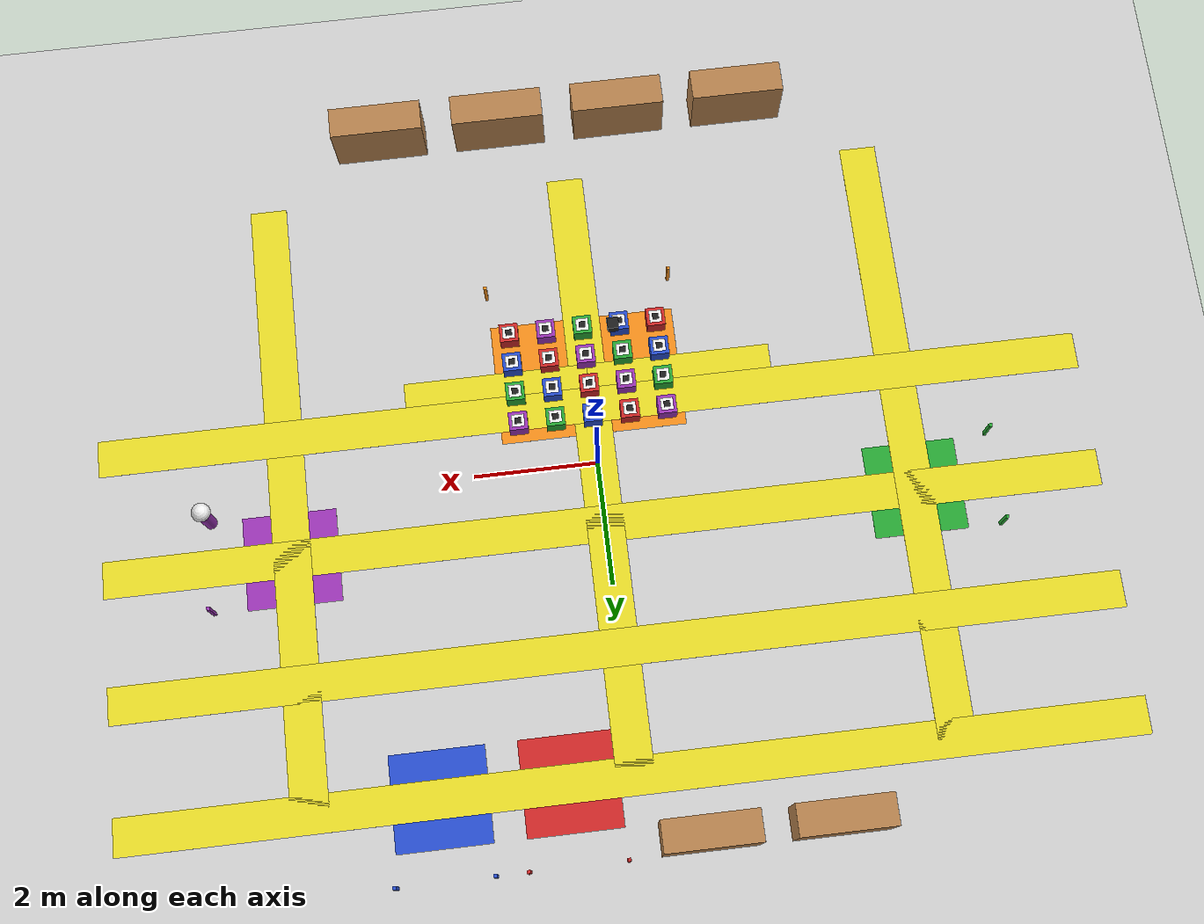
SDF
<?xml version="1.0"?>
<sdf version="1.4">
  <world name="warehouse_world">

    <!-- Physics settings -->
    <physics type="ode">
      <real_time_update_rate>1000.0</real_time_update_rate>
      <max_step_size>0.001</max_step_size>
      <real_time_factor>1</real_time_factor>
      <ode>
        <solver>
          <type>quick</type>
          <iters>150</iters>
          <precon_iters>0</precon_iters>
          <sor>1.400000</sor>
          <use_dynamic_moi_rescaling>1</use_dynamic_moi_rescaling>
        </solver>
        <constraints>
          <cfm>0.00001</cfm>
          <erp>0.2</erp>
          <contact_max_correcting_vel>2000.000000</contact_max_correcting_vel>
          <contact_surface_layer>0.01000</contact_surface_layer>
        </constraints>
      </ode>
    </physics>

    <!-- Scene -->
    <scene>
      <ambient>0.4 0.4 0.4 1</ambient>
      <background>0.7 0.7 0.7 1</background>
      <shadows>true</shadows>
    </scene>

    <!-- Light -->
    <include>
      <uri>model://sun</uri>
    </include>

    <!-- Ground plane -->
    <model name="ground_plane">
      <static>true</static>
      <link name="link">
        <collision name="collision">
          <geometry>
            <plane>
              <normal>0 0 1</normal>
              <size>20 20</size>
            </plane>
          </geometry>
          <surface>
            <friction>
              <ode>
                <mu>100</mu>
                <mu2>50</mu2>
              </ode>
            </friction>
          </surface>
        </collision>
        <visual name="visual">
          <cast_shadows>false</cast_shadows>
          <geometry>
            <plane>
              <normal>0 0 1</normal>
              <size>20 20</size>
            </plane>
          </geometry>
          <material>
            <script>
              <uri>file://media/materials/scripts/gazebo.material</uri>
              <name>Gazebo/Grey</name>
            </script>
          </material>
        </visual>
      </link>
    </model>

    <!-- Overhead Camera for Bird's Eye View -->
    <model name="overhead_camera">
      <static>true</static>
      <pose>0 2 12 0 1.5708 0</pose>
      <link name="camera_link">
        <visual name="visual">
          <geometry>
            <box>
              <size>0.1 0.1 0.1</size>
            </box>
          </geometry>
          <material>
            <script>
              <uri>file://media/materials/scripts/gazebo.material</uri>
              <name>Gazebo/Black</name>
            </script>
          </material>
        </visual>
        <sensor name="overhead_camera_sensor" type="camera">
          <camera>
            <horizontal_fov>1.5708</horizontal_fov>
            <image>
              <width>1920</width>
              <height>1080</height>
              <format>R8G8B8</format>
            </image>
            <clip>
              <near>0.1</near>
              <far>20</far>
            </clip>
            <noise>
              <type>gaussian</type>
              <mean>0.0</mean>
              <stddev>0.001</stddev>
            </noise>
          </camera>
          <always_on>1</always_on>
          <update_rate>30</update_rate>
          <visualize>true</visualize>
          <plugin name="overhead_camera_controller" filename="libgazebo_ros_camera.so">
            <alwaysOn>true</alwaysOn>
            <updateRate>30.0</updateRate>
            <cameraName>overhead_camera</cameraName>
            <imageTopicName>image_raw</imageTopicName>
            <cameraInfoTopicName>camera_info</cameraInfoTopicName>
            <frameName>overhead_camera_link</frameName>
            <hackBaseline>0.0</hackBaseline>
            <distortionK1>0.0</distortionK1>
            <distortionK2>0.0</distortionK2>
            <distortionK3>0.0</distortionK3>
            <distortionT1>0.0</distortionT1>
            <distortionT2>0.0</distortionT2>
          </plugin>
        </sensor>
      </link>
    </model>

    <!-- Yellow lane lines (widened 4x) -->
    <!-- Main horizontal lanes -->
    <model name="lane_h1">
      <static>true</static>
      <pose>0 5 0.002 0 0 0</pose>
      <link name="link">
        <collision name="collision">
          <geometry>
            <box>
              <size>16 0.6 0.002</size>
            </box>
          </geometry>
        </collision>
        <visual name="visual">
          <geometry>
            <box>
              <size>16 0.6 0.002</size>
            </box>
          </geometry>
          <material>
            <script>
              <uri>file://media/materials/scripts/gazebo.material</uri>
              <name>Gazebo/Yellow</name>
            </script>
          </material>
        </visual>
      </link>
    </model>

    <model name="lane_h2">
      <static>true</static>
      <pose>0 3 0.002 0 0 0</pose>
      <link name="link">
        <collision name="collision">
          <geometry>
            <box>
              <size>16 0.6 0.002</size>
            </box>
          </geometry>
        </collision>
        <visual name="visual">
          <geometry>
            <box>
              <size>16 0.6 0.002</size>
            </box>
          </geometry>
          <material>
            <script>
              <uri>file://media/materials/scripts/gazebo.material</uri>
              <name>Gazebo/Yellow</name>
            </script>
          </material>
        </visual>
      </link>
    </model>

    <model name="lane_h3">
      <static>true</static>
      <pose>0 1 0.002 0 0 0</pose>
      <link name="link">
        <collision name="collision">
          <geometry>
            <box>
              <size>16 0.6 0.002</size>
            </box>
          </geometry>
        </collision>
        <visual name="visual">
          <geometry>
            <box>
              <size>16 0.6 0.002</size>
            </box>
          </geometry>
          <material>
            <script>
              <uri>file://media/materials/scripts/gazebo.material</uri>
              <name>Gazebo/Yellow</name>
            </script>
          </material>
        </visual>
      </link>
    </model>

    <!-- Additional horizontal lane at y=-1 -->
    <model name="lane_h0">
      <static>true</static>
      <pose>0 -1 0.002 0 0 0</pose>
      <link name="link">
        <collision name="collision">
          <geometry>
            <box>
              <size>16 0.6 0.002</size>
            </box>
          </geometry>
        </collision>
        <visual name="visual">
          <geometry>
            <box>
              <size>16 0.6 0.002</size>
            </box>
          </geometry>
          <material>
            <script>
              <uri>file://media/materials/scripts/gazebo.material</uri>
              <name>Gazebo/Yellow</name>
            </script>
          </material>
        </visual>
      </link>
    </model>

    <!-- Vertical connecting lanes -->
    <model name="lane_v1">
      <static>true</static>
      <pose>-5 0 0.002 0 0 1.5708</pose>
      <link name="link">
        <collision name="collision">
          <geometry>
            <box>
              <size>10 0.6 0.002</size>
            </box>
          </geometry>
        </collision>
        <visual name="visual">
          <geometry>
            <box>
              <size>10 0.6 0.002</size>
            </box>
          </geometry>
          <material>
            <script>
              <uri>file://media/materials/scripts/gazebo.material</uri>
              <name>Gazebo/Yellow</name>
            </script>
          </material>
        </visual>
      </link>
    </model>

    <model name="lane_v2">
      <static>true</static>
      <pose>0 0 0.002 0 0 1.5708</pose>
      <link name="link">
        <collision name="collision">
          <geometry>
            <box>
              <size>10 0.6 0.002</size>
            </box>
          </geometry>
        </collision>
        <visual name="visual">
          <geometry>
            <box>
              <size>10 0.6 0.002</size>
            </box>
          </geometry>
          <material>
            <script>
              <uri>file://media/materials/scripts/gazebo.material</uri>
              <name>Gazebo/Yellow</name>
            </script>
          </material>
        </visual>
      </link>
    </model>

    <model name="lane_v3">
      <static>true</static>
      <pose>5 0 0.002 0 0 1.5708</pose>
      <link name="link">
        <collision name="collision">
          <geometry>
            <box>
              <size>10 0.6 0.002</size>
            </box>
          </geometry>
        </collision>
        <visual name="visual">
          <geometry>
            <box>
              <size>10 0.6 0.002</size>
            </box>
          </geometry>
          <material>
            <script>
              <uri>file://media/materials/scripts/gazebo.material</uri>
              <name>Gazebo/Yellow</name>
            </script>
          </material>
        </visual>
      </link>
    </model>

    <!-- Pickup area guide lines -->
    <model name="pickup_guide_line_1">
      <static>true</static>
      <pose>-1.5 -1.5 0.002 0 0 0</pose>
      <link name="link">
        <collision name="collision">
          <geometry>
            <box>
              <size>3 0.4 0.002</size>
            </box>
          </geometry>
        </collision>
        <visual name="visual">
          <geometry>
            <box>
              <size>3 0.4 0.002</size>
            </box>
          </geometry>
          <material>
            <script>
              <uri>file://media/materials/scripts/gazebo.material</uri>
              <name>Gazebo/Yellow</name>
            </script>
          </material>
        </visual>
      </link>
    </model>

    <model name="pickup_guide_line_2">
      <static>true</static>
      <pose>1.5 -1.5 0.002 0 0 0</pose>
      <link name="link">
        <collision name="collision">
          <geometry>
            <box>
              <size>3 0.4 0.002</size>
            </box>
          </geometry>
        </collision>
        <visual name="visual">
          <geometry>
            <box>
              <size>3 0.4 0.002</size>
            </box>
          </geometry>
          <material>
            <script>
              <uri>file://media/materials/scripts/gazebo.material</uri>
              <name>Gazebo/Yellow</name>
            </script>
          </material>
        </visual>
      </link>
    </model>

    <!-- Cross guide lines in pickup area -->
    <model name="pickup_cross_h">
      <static>true</static>
      <pose>0 -1.5 0.001 0 0 0</pose>
      <link name="link">
        <collision name="collision">
          <geometry>
            <box>
              <size>2.5 0.32 0.001</size>
            </box>
          </geometry>
        </collision>
        <visual name="visual">
          <geometry>
            <box>
              <size>2.5 0.32 0.001</size>
            </box>
          </geometry>
          <material>
            <script>
              <uri>file://media/materials/scripts/gazebo.material</uri>
              <name>Gazebo/Yellow</name>
            </script>
          </material>
        </visual>
      </link>
    </model>

    <model name="pickup_cross_v">
      <static>true</static>
      <pose>0 -1.5 0.001 0 0 1.5708</pose>
      <link name="link">
        <collision name="collision">
          <geometry>
            <box>
              <size>1.5 0.32 0.001</size>
            </box>
          </geometry>
        </collision>
        <visual name="visual">
          <geometry>
            <box>
              <size>1.5 0.32 0.001</size>
            </box>
          </geometry>
          <material>
            <script>
              <uri>file://media/materials/scripts/gazebo.material</uri>
              <name>Gazebo/Yellow</name>
            </script>
          </material>
        </visual>
      </link>
    </model>

    <!-- Shelves (6 shelves in two rows) -->
    <model name="shelf_1">
      <static>true</static>
      <pose>-3 -6 0 0 0 0</pose>
      <link name="link">
        <collision name="collision">
          <geometry>
            <box>
              <size>1.5 0.5 2</size>
            </box>
          </geometry>
        </collision>
        <visual name="visual">
          <geometry>
            <box>
              <size>1.5 0.5 2</size>
            </box>
          </geometry>
          <material>
            <script>
              <uri>file://media/materials/scripts/gazebo.material</uri>
              <name>Gazebo/Wood</name>
            </script>
          </material>
        </visual>
      </link>
    </model>

    <model name="shelf_2">
      <static>true</static>
      <pose>-1 -6 0 0 0 0</pose>
      <link name="link">
        <collision name="collision">
          <geometry>
            <box>
              <size>1.5 0.5 2</size>
            </box>
          </geometry>
        </collision>
        <visual name="visual">
          <geometry>
            <box>
              <size>1.5 0.5 2</size>
            </box>
          </geometry>
          <material>
            <script>
              <uri>file://media/materials/scripts/gazebo.material</uri>
              <name>Gazebo/Wood</name>
            </script>
          </material>
        </visual>
      </link>
    </model>

    <model name="shelf_3">
      <static>true</static>
      <pose>1 -6 0 0 0 0</pose>
      <link name="link">
        <collision name="collision">
          <geometry>
            <box>
              <size>1.5 0.5 2</size>
            </box>
          </geometry>
        </collision>
        <visual name="visual">
          <geometry>
            <box>
              <size>1.5 0.5 2</size>
            </box>
          </geometry>
          <material>
            <script>
              <uri>file://media/materials/scripts/gazebo.material</uri>
              <name>Gazebo/Wood</name>
            </script>
          </material>
        </visual>
      </link>
    </model>

    <model name="shelf_4">
      <static>true</static>
      <pose>3 -6 0 0 0 0</pose>
      <link name="link">
        <collision name="collision">
          <geometry>
            <box>
              <size>1.5 0.5 2</size>
            </box>
          </geometry>
        </collision>
        <visual name="visual">
          <geometry>
            <box>
              <size>1.5 0.5 2</size>
            </box>
          </geometry>
          <material>
            <script>
              <uri>file://media/materials/scripts/gazebo.material</uri>
              <name>Gazebo/Wood</name>
            </script>
          </material>
        </visual>
      </link>
    </model>

    <model name="shelf_5">
      <static>true</static>
      <pose>-3 6 0 0 0 0</pose>
      <link name="link">
        <collision name="collision">
          <geometry>
            <box>
              <size>1.5 0.5 2</size>
            </box>
          </geometry>
        </collision>
        <visual name="visual">
          <geometry>
            <box>
              <size>1.5 0.5 2</size>
            </box>
          </geometry>
          <material>
            <script>
              <uri>file://media/materials/scripts/gazebo.material</uri>
              <name>Gazebo/Wood</name>
            </script>
          </material>
        </visual>
      </link>
    </model>

    <model name="shelf_6">
      <static>true</static>
      <pose>-1 6 0 0 0 0</pose>
      <link name="link">
        <collision name="collision">
          <geometry>
            <box>
              <size>1.5 0.5 2</size>
            </box>
          </geometry>
        </collision>
        <visual name="visual">
          <geometry>
            <box>
              <size>1.5 0.5 2</size>
            </box>
          </geometry>
          <material>
            <script>
              <uri>file://media/materials/scripts/gazebo.material</uri>
              <name>Gazebo/Wood</name>
            </script>
          </material>
        </visual>
      </link>
    </model>

    <!-- Delivery areas with colored markers -->
    <!-- Red delivery area -->
    <model name="delivery_area_red">
      <static>true</static>
      <pose>1 5 0.001 0 0 0</pose>
      <link name="link">
        <collision name="collision">
          <geometry>
            <box>
              <size>1.5 1.5 0.001</size>
            </box>
          </geometry>
        </collision>
        <visual name="visual">
          <geometry>
            <box>
              <size>1.5 1.5 0.001</size>
            </box>
          </geometry>
          <material>
            <script>
              <uri>file://media/materials/scripts/gazebo.material</uri>
              <name>Gazebo/Red</name>
            </script>
          </material>
        </visual>
      </link>
    </model>

    <!-- Red area markers (moved away from lane lines) -->
    <model name="red_marker_1">
      <static>true</static>
      <pose>0.25 6.25 0.3 0 0 0</pose>
      <link name="link">
        <visual name="visual">
          <geometry>
            <box>
              <size>0.05 0.05 0.5</size>
            </box>
          </geometry>
          <material>
            <script>
              <uri>file://media/materials/scripts/gazebo.material</uri>
              <name>Gazebo/Red</name>
            </script>
          </material>
        </visual>
      </link>
    </model>

    <model name="red_marker_2">
      <static>true</static>
      <pose>1.75 6.25 0.3 0 0 0</pose>
      <link name="link">
        <visual name="visual">
          <geometry>
            <box>
              <size>0.05 0.05 0.5</size>
            </box>
          </geometry>
          <material>
            <script>
              <uri>file://media/materials/scripts/gazebo.material</uri>
              <name>Gazebo/Red</name>
            </script>
          </material>
        </visual>
      </link>
    </model>

    <!-- Blue delivery area -->
    <model name="delivery_area_blue">
      <static>true</static>
      <pose>3 5 0.001 0 0 0</pose>
      <link name="link">
        <collision name="collision">
          <geometry>
            <box>
              <size>1.5 1.5 0.001</size>
            </box>
          </geometry>
        </collision>
        <visual name="visual">
          <geometry>
            <box>
              <size>1.5 1.5 0.001</size>
            </box>
          </geometry>
          <material>
            <script>
              <uri>file://media/materials/scripts/gazebo.material</uri>
              <name>Gazebo/Blue</name>
            </script>
          </material>
        </visual>
      </link>
    </model>

    <!-- Blue area markers (moved away from lane lines) -->
    <model name="blue_marker_1">
      <static>true</static>
      <pose>2.25 6.25 0.3 0 0 0</pose>
      <link name="link">
        <visual name="visual">
          <geometry>
            <box>
              <size>0.05 0.05 0.5</size>
            </box>
          </geometry>
          <material>
            <script>
              <uri>file://media/materials/scripts/gazebo.material</uri>
              <name>Gazebo/Blue</name>
            </script>
          </material>
        </visual>
      </link>
    </model>

    <model name="blue_marker_2">
      <static>true</static>
      <pose>3.75 6.25 0.3 0 0 0</pose>
      <link name="link">
        <visual name="visual">
          <geometry>
            <box>
              <size>0.05 0.05 0.5</size>
            </box>
          </geometry>
          <material>
            <script>
              <uri>file://media/materials/scripts/gazebo.material</uri>
              <name>Gazebo/Blue</name>
            </script>
          </material>
        </visual>
      </link>
    </model>

    <!-- Green delivery area -->
    <model name="delivery_area_green">
      <static>true</static>
      <pose>-5 1 0.001 0 0 0</pose>
      <link name="link">
        <collision name="collision">
          <geometry>
            <box>
              <size>1.5 1.5 0.001</size>
            </box>
          </geometry>
        </collision>
        <visual name="visual">
          <geometry>
            <box>
              <size>1.5 1.5 0.001</size>
            </box>
          </geometry>
          <material>
            <script>
              <uri>file://media/materials/scripts/gazebo.material</uri>
              <name>Gazebo/Green</name>
            </script>
          </material>
        </visual>
      </link>
    </model>

    <!-- Green area markers (moved away from lane lines) -->
    <model name="green_marker_1">
      <static>true</static>
      <pose>-6.25 0.25 0.3 0 0 0</pose>
      <link name="link">
        <visual name="visual">
          <geometry>
            <box>
              <size>0.05 0.05 0.5</size>
            </box>
          </geometry>
          <material>
            <script>
              <uri>file://media/materials/scripts/gazebo.material</uri>
              <name>Gazebo/Green</name>
            </script>
          </material>
        </visual>
      </link>
    </model>

    <model name="green_marker_2">
      <static>true</static>
      <pose>-6.25 1.75 0.3 0 0 0</pose>
      <link name="link">
        <visual name="visual">
          <geometry>
            <box>
              <size>0.05 0.05 0.5</size>
            </box>
          </geometry>
          <material>
            <script>
              <uri>file://media/materials/scripts/gazebo.material</uri>
              <name>Gazebo/Green</name>
            </script>
          </material>
        </visual>
      </link>
    </model>

    <!-- Purple delivery area -->
    <model name="delivery_area_purple">
      <static>true</static>
      <pose>5 1 0.001 0 0 0</pose>
      <link name="link">
        <collision name="collision">
          <geometry>
            <box>
              <size>1.5 1.5 0.001</size>
            </box>
          </geometry>
        </collision>
        <visual name="visual">
          <geometry>
            <box>
              <size>1.5 1.5 0.001</size>
            </box>
          </geometry>
          <material>
            <script>
              <uri>file://media/materials/scripts/gazebo.material</uri>
              <name>Gazebo/Purple</name>
            </script>
          </material>
        </visual>
      </link>
    </model>

    <!-- Purple area markers (moved away from lane lines) -->
    <model name="purple_marker_1">
      <static>true</static>
      <pose>6.25 0.25 0.3 0 0 0</pose>
      <link name="link">
        <visual name="visual">
          <geometry>
            <cylinder>
              <radius>0.1</radius>
              <length>0.8</length>
            </cylinder>
          </geometry>
          <material>
            <script>
              <uri>file://media/materials/scripts/gazebo.material</uri>
              <name>Gazebo/Purple</name>
            </script>
            <ambient>1.0 0.0 1.0 1.0</ambient>
          </material>
        </visual>
        <visual name="top_visual">
          <pose>0 0 0.4 0 0 0</pose>
          <geometry>
            <sphere>
              <radius>0.15</radius>
            </sphere>
          </geometry>
          <material>
            <script>
              <uri>file://media/materials/scripts/gazebo.material</uri>
              <name>Gazebo/White</name>
            </script>
          </material>
        </visual>
      </link>
    </model>

    <model name="purple_marker_2">
      <static>true</static>
      <pose>6.25 1.75 0.3 0 0 0</pose>
      <link name="link">
        <visual name="visual">
          <geometry>
            <box>
              <size>0.05 0.05 0.5</size>
            </box>
          </geometry>
          <material>
            <script>
              <uri>file://media/materials/scripts/gazebo.material</uri>
              <name>Gazebo/Purple</name>
            </script>
          </material>
        </visual>
      </link>
    </model>

    <!-- Package pickup area -->
    <model name="pickup_area">
      <static>true</static>
      <pose>0 -1.5 0.001 0 0 0</pose>
      <link name="link">
        <collision name="collision">
          <geometry>
            <box>
              <size>3 2 0.001</size>
            </box>
          </geometry>
        </collision>
        <visual name="visual">
          <geometry>
            <box>
              <size>3 2 0.001</size>
            </box>
          </geometry>
          <material>
            <script>
              <uri>file://media/materials/scripts/gazebo.material</uri>
              <name>Gazebo/Orange</name>
            </script>
          </material>
        </visual>
      </link>
    </model>

    <!-- Pickup area markers (positioned to not interfere with lanes) -->
    <model name="pickup_marker_1">
      <static>true</static>
      <pose>-1.5 -3 0.3 0 0 0</pose>
      <link name="link">
        <visual name="visual">
          <geometry>
            <box>
              <size>0.05 0.05 0.5</size>
            </box>
          </geometry>
          <material>
            <script>
              <uri>file://media/materials/scripts/gazebo.material</uri>
              <name>Gazebo/Orange</name>
            </script>
          </material>
        </visual>
      </link>
    </model>

    <model name="pickup_marker_2">
      <static>true</static>
      <pose>1.5 -3 0.3 0 0 0</pose>
      <link name="link">
        <visual name="visual">
          <geometry>
            <box>
              <size>0.05 0.05 0.5</size>
            </box>
          </geometry>
          <material>
            <script>
              <uri>file://media/materials/scripts/gazebo.material</uri>
              <name>Gazebo/Orange</name>
            </script>
          </material>
        </visual>
      </link>
    </model>

    <!-- 20 Packages with color coding -->
    <!-- Package 1 - Red destination -->
    <model name="package_1">
      <pose>-1.2 -2.25 0.25 0 0 0</pose>
      <link name="link">
        <collision name="collision">
          <geometry>
            <box>
              <size>0.3 0.3 0.3</size>
            </box>
          </geometry>
        </collision>
        <visual name="visual">
          <geometry>
            <box>
              <size>0.3 0.3 0.3</size>
            </box>
          </geometry>
          <material>
            <script>
              <uri>file://media/materials/scripts/gazebo.material</uri>
              <name>Gazebo/Red</name>
            </script>
          </material>
        </visual>
        <visual name="barcode">
          <pose>0 0 0.151 0 0 0</pose>
          <geometry>
            <box>
              <size>0.2 0.2 0.001</size>
            </box>
          </geometry>
          <material>
            <script>
              <uri>file://media/materials/scripts/gazebo.material</uri>
              <name>Gazebo/White</name>
            </script>
          </material>
        </visual>
        <visual name="color_indicator">
          <pose>0 0 0.152 0 0 0</pose>
          <geometry>
            <box>
              <size>0.1 0.1 0.001</size>
            </box>
          </geometry>
          <material>
            <script>
              <uri>file://media/materials/scripts/gazebo.material</uri>
              <name>Gazebo/Black</name>
            </script>
          </material>
        </visual>
      </link>
    </model>

    <!-- Package 2 -->
    <model name="package_2">
      <pose>-0.6 -2.25 0.25 0 0 0</pose>
      <link name="link">
        <collision name="collision">
          <geometry>
            <box>
              <size>0.3 0.3 0.3</size>
            </box>
          </geometry>
        </collision>
        <visual name="visual">
          <geometry>
            <box>
              <size>0.3 0.3 0.3</size>
            </box>
          </geometry>
          <material>
            <script>
              <uri>file://media/materials/scripts/gazebo.material</uri>
              <name>Gazebo/Blue</name>
            </script>
          </material>
        </visual>
        <visual name="barcode">
          <pose>0 0 0.151 0 0 0</pose>
          <geometry>
            <box>
              <size>0.2 0.2 0.001</size>
            </box>
          </geometry>
          <material>
            <script>
              <uri>file://media/materials/scripts/gazebo.material</uri>
              <name>Gazebo/White</name>
            </script>
          </material>
        </visual>
        <visual name="color_indicator">
          <pose>0 0 0.152 0 0 0</pose>
          <geometry>
            <box>
              <size>0.1 0.1 0.001</size>
            </box>
          </geometry>
          <material>
            <script>
              <uri>file://media/materials/scripts/gazebo.material</uri>
              <name>Gazebo/Black</name>
            </script>
          </material>
        </visual>
      </link>
    </model>

    <!-- Package 3 -->
    <model name="package_3">
      <pose>0 -2.25 0.25 0 0 0</pose>
      <link name="link">
        <collision name="collision">
          <geometry>
            <box>
              <size>0.3 0.3 0.3</size>
            </box>
          </geometry>
        </collision>
        <visual name="visual">
          <geometry>
            <box>
              <size>0.3 0.3 0.3</size>
            </box>
          </geometry>
          <material>
            <script>
              <uri>file://media/materials/scripts/gazebo.material</uri>
              <name>Gazebo/Green</name>
            </script>
          </material>
        </visual>
        <visual name="barcode">
          <pose>0 0 0.151 0 0 0</pose>
          <geometry>
            <box>
              <size>0.2 0.2 0.001</size>
            </box>
          </geometry>
          <material>
            <script>
              <uri>file://media/materials/scripts/gazebo.material</uri>
              <name>Gazebo/White</name>
            </script>
          </material>
        </visual>
        <visual name="color_indicator">
          <pose>0 0 0.152 0 0 0</pose>
          <geometry>
            <box>
              <size>0.1 0.1 0.001</size>
            </box>
          </geometry>
          <material>
            <script>
              <uri>file://media/materials/scripts/gazebo.material</uri>
              <name>Gazebo/Black</name>
            </script>
          </material>
        </visual>
      </link>
    </model>

    <!-- Package 4 -->
    <model name="package_4">
      <pose>0.6 -2.25 0.25 0 0 0</pose>
      <link name="link">
        <collision name="collision">
          <geometry>
            <box>
              <size>0.3 0.3 0.3</size>
            </box>
          </geometry>
        </collision>
        <visual name="visual">
          <geometry>
            <box>
              <size>0.3 0.3 0.3</size>
            </box>
          </geometry>
          <material>
            <script>
              <uri>file://media/materials/scripts/gazebo.material</uri>
              <name>Gazebo/Purple</name>
            </script>
          </material>
        </visual>
        <visual name="barcode">
          <pose>0 0 0.151 0 0 0</pose>
          <geometry>
            <box>
              <size>0.2 0.2 0.001</size>
            </box>
          </geometry>
          <material>
            <script>
              <uri>file://media/materials/scripts/gazebo.material</uri>
              <name>Gazebo/White</name>
            </script>
          </material>
        </visual>
        <visual name="color_indicator">
          <pose>0 0 0.152 0 0 0</pose>
          <geometry>
            <box>
              <size>0.1 0.1 0.001</size>
            </box>
          </geometry>
          <material>
            <script>
              <uri>file://media/materials/scripts/gazebo.material</uri>
              <name>Gazebo/Black</name>
            </script>
          </material>
        </visual>
      </link>
    </model>

    <!-- Package 5 -->
    <model name="package_5">
      <pose>1.2 -2.25 0.25 0 0 0</pose>
      <link name="link">
        <collision name="collision">
          <geometry>
            <box>
              <size>0.3 0.3 0.3</size>
            </box>
          </geometry>
        </collision>
        <visual name="visual">
          <geometry>
            <box>
              <size>0.3 0.3 0.3</size>
            </box>
          </geometry>
          <material>
            <script>
              <uri>file://media/materials/scripts/gazebo.material</uri>
              <name>Gazebo/Red</name>
            </script>
          </material>
        </visual>
        <visual name="barcode">
          <pose>0 0 0.151 0 0 0</pose>
          <geometry>
            <box>
              <size>0.2 0.2 0.001</size>
            </box>
          </geometry>
          <material>
            <script>
              <uri>file://media/materials/scripts/gazebo.material</uri>
              <name>Gazebo/White</name>
            </script>
          </material>
        </visual>
        <visual name="color_indicator">
          <pose>0 0 0.152 0 0 0</pose>
          <geometry>
            <box>
              <size>0.1 0.1 0.001</size>
            </box>
          </geometry>
          <material>
            <script>
              <uri>file://media/materials/scripts/gazebo.material</uri>
              <name>Gazebo/Black</name>
            </script>
          </material>
        </visual>
      </link>
    </model>

    <!-- Package 6 -->
    <model name="package_6">
      <pose>-1.2 -1.75 0.25 0 0 0</pose>
      <link name="link">
        <collision name="collision">
          <geometry>
            <box>
              <size>0.3 0.3 0.3</size>
            </box>
          </geometry>
        </collision>
        <visual name="visual">
          <geometry>
            <box>
              <size>0.3 0.3 0.3</size>
            </box>
          </geometry>
          <material>
            <script>
              <uri>file://media/materials/scripts/gazebo.material</uri>
              <name>Gazebo/Blue</name>
            </script>
          </material>
        </visual>
        <visual name="barcode">
          <pose>0 0 0.151 0 0 0</pose>
          <geometry>
            <box>
              <size>0.2 0.2 0.001</size>
            </box>
          </geometry>
          <material>
            <script>
              <uri>file://media/materials/scripts/gazebo.material</uri>
              <name>Gazebo/White</name>
            </script>
          </material>
        </visual>
        <visual name="color_indicator">
          <pose>0 0 0.152 0 0 0</pose>
          <geometry>
            <box>
              <size>0.1 0.1 0.001</size>
            </box>
          </geometry>
          <material>
            <script>
              <uri>file://media/materials/scripts/gazebo.material</uri>
              <name>Gazebo/Black</name>
            </script>
          </material>
        </visual>
      </link>
    </model>

    <!-- Package 7 -->
    <model name="package_7">
      <pose>-0.6 -1.75 0.25 0 0 0</pose>
      <link name="link">
        <collision name="collision">
          <geometry>
            <box>
              <size>0.3 0.3 0.3</size>
            </box>
          </geometry>
        </collision>
        <visual name="visual">
          <geometry>
            <box>
              <size>0.3 0.3 0.3</size>
            </box>
          </geometry>
          <material>
            <script>
              <uri>file://media/materials/scripts/gazebo.material</uri>
              <name>Gazebo/Green</name>
            </script>
          </material>
        </visual>
        <visual name="barcode">
          <pose>0 0 0.151 0 0 0</pose>
          <geometry>
            <box>
              <size>0.2 0.2 0.001</size>
            </box>
          </geometry>
          <material>
            <script>
              <uri>file://media/materials/scripts/gazebo.material</uri>
              <name>Gazebo/White</name>
            </script>
          </material>
        </visual>
        <visual name="color_indicator">
          <pose>0 0 0.152 0 0 0</pose>
          <geometry>
            <box>
              <size>0.1 0.1 0.001</size>
            </box>
          </geometry>
          <material>
            <script>
              <uri>file://media/materials/scripts/gazebo.material</uri>
              <name>Gazebo/Black</name>
            </script>
          </material>
        </visual>
      </link>
    </model>

    <!-- Package 8 -->
    <model name="package_8">
      <pose>0 -1.75 0.25 0 0 0</pose>
      <link name="link">
        <collision name="collision">
          <geometry>
            <box>
              <size>0.3 0.3 0.3</size>
            </box>
          </geometry>
        </collision>
        <visual name="visual">
          <geometry>
            <box>
              <size>0.3 0.3 0.3</size>
            </box>
          </geometry>
          <material>
            <script>
              <uri>file://media/materials/scripts/gazebo.material</uri>
              <name>Gazebo/Purple</name>
            </script>
          </material>
        </visual>
        <visual name="barcode">
          <pose>0 0 0.151 0 0 0</pose>
          <geometry>
            <box>
              <size>0.2 0.2 0.001</size>
            </box>
          </geometry>
          <material>
            <script>
              <uri>file://media/materials/scripts/gazebo.material</uri>
              <name>Gazebo/White</name>
            </script>
          </material>
        </visual>
        <visual name="color_indicator">
          <pose>0 0 0.152 0 0 0</pose>
          <geometry>
            <box>
              <size>0.1 0.1 0.001</size>
            </box>
          </geometry>
          <material>
            <script>
              <uri>file://media/materials/scripts/gazebo.material</uri>
              <name>Gazebo/Black</name>
            </script>
          </material>
        </visual>
      </link>
    </model>

    <!-- Package 9 -->
    <model name="package_9">
      <pose>0.6 -1.75 0.25 0 0 0</pose>
      <link name="link">
        <collision name="collision">
          <geometry>
            <box>
              <size>0.3 0.3 0.3</size>
            </box>
          </geometry>
        </collision>
        <visual name="visual">
          <geometry>
            <box>
              <size>0.3 0.3 0.3</size>
            </box>
          </geometry>
          <material>
            <script>
              <uri>file://media/materials/scripts/gazebo.material</uri>
              <name>Gazebo/Red</name>
            </script>
          </material>
        </visual>
        <visual name="barcode">
          <pose>0 0 0.151 0 0 0</pose>
          <geometry>
            <box>
              <size>0.2 0.2 0.001</size>
            </box>
          </geometry>
          <material>
            <script>
              <uri>file://media/materials/scripts/gazebo.material</uri>
              <name>Gazebo/White</name>
            </script>
          </material>
        </visual>
        <visual name="color_indicator">
          <pose>0 0 0.152 0 0 0</pose>
          <geometry>
            <box>
              <size>0.1 0.1 0.001</size>
            </box>
          </geometry>
          <material>
            <script>
              <uri>file://media/materials/scripts/gazebo.material</uri>
              <name>Gazebo/Black</name>
            </script>
          </material>
        </visual>
      </link>
    </model>

    <!-- Package 10 -->
    <model name="package_10">
      <pose>1.2 -1.75 0.25 0 0 0</pose>
      <link name="link">
        <collision name="collision">
          <geometry>
            <box>
              <size>0.3 0.3 0.3</size>
            </box>
          </geometry>
        </collision>
        <visual name="visual">
          <geometry>
            <box>
              <size>0.3 0.3 0.3</size>
            </box>
          </geometry>
          <material>
            <script>
              <uri>file://media/materials/scripts/gazebo.material</uri>
              <name>Gazebo/Blue</name>
            </script>
          </material>
        </visual>
        <visual name="barcode">
          <pose>0 0 0.151 0 0 0</pose>
          <geometry>
            <box>
              <size>0.2 0.2 0.001</size>
            </box>
          </geometry>
          <material>
            <script>
              <uri>file://media/materials/scripts/gazebo.material</uri>
              <name>Gazebo/White</name>
            </script>
          </material>
        </visual>
        <visual name="color_indicator">
          <pose>0 0 0.152 0 0 0</pose>
          <geometry>
            <box>
              <size>0.1 0.1 0.001</size>
            </box>
          </geometry>
          <material>
            <script>
              <uri>file://media/materials/scripts/gazebo.material</uri>
              <name>Gazebo/Black</name>
            </script>
          </material>
        </visual>
      </link>
    </model>

    <!-- Package 11 -->
    <model name="package_11">
      <pose>-1.2 -1.25 0.25 0 0 0</pose>
      <link name="link">
        <collision name="collision">
          <geometry>
            <box>
              <size>0.3 0.3 0.3</size>
            </box>
          </geometry>
        </collision>
        <visual name="visual">
          <geometry>
            <box>
              <size>0.3 0.3 0.3</size>
            </box>
          </geometry>
          <material>
            <script>
              <uri>file://media/materials/scripts/gazebo.material</uri>
              <name>Gazebo/Green</name>
            </script>
          </material>
        </visual>
        <visual name="barcode">
          <pose>0 0 0.151 0 0 0</pose>
          <geometry>
            <box>
              <size>0.2 0.2 0.001</size>
            </box>
          </geometry>
          <material>
            <script>
              <uri>file://media/materials/scripts/gazebo.material</uri>
              <name>Gazebo/White</name>
            </script>
          </material>
        </visual>
        <visual name="color_indicator">
          <pose>0 0 0.152 0 0 0</pose>
          <geometry>
            <box>
              <size>0.1 0.1 0.001</size>
            </box>
          </geometry>
          <material>
            <script>
              <uri>file://media/materials/scripts/gazebo.material</uri>
              <name>Gazebo/Black</name>
            </script>
          </material>
        </visual>
      </link>
    </model>

    <!-- Package 12 -->
    <model name="package_12">
      <pose>-0.6 -1.25 0.25 0 0 0</pose>
      <link name="link">
        <collision name="collision">
          <geometry>
            <box>
              <size>0.3 0.3 0.3</size>
            </box>
          </geometry>
        </collision>
        <visual name="visual">
          <geometry>
            <box>
              <size>0.3 0.3 0.3</size>
            </box>
          </geometry>
          <material>
            <script>
              <uri>file://media/materials/scripts/gazebo.material</uri>
              <name>Gazebo/Purple</name>
            </script>
          </material>
        </visual>
        <visual name="barcode">
          <pose>0 0 0.151 0 0 0</pose>
          <geometry>
            <box>
              <size>0.2 0.2 0.001</size>
            </box>
          </geometry>
          <material>
            <script>
              <uri>file://media/materials/scripts/gazebo.material</uri>
              <name>Gazebo/White</name>
            </script>
          </material>
        </visual>
        <visual name="color_indicator">
          <pose>0 0 0.152 0 0 0</pose>
          <geometry>
            <box>
              <size>0.1 0.1 0.001</size>
            </box>
          </geometry>
          <material>
            <script>
              <uri>file://media/materials/scripts/gazebo.material</uri>
              <name>Gazebo/Black</name>
            </script>
          </material>
        </visual>
      </link>
    </model>

    <!-- Package 13 -->
    <model name="package_13">
      <pose>0 -1.25 0.25 0 0 0</pose>
      <link name="link">
        <collision name="collision">
          <geometry>
            <box>
              <size>0.3 0.3 0.3</size>
            </box>
          </geometry>
        </collision>
        <visual name="visual">
          <geometry>
            <box>
              <size>0.3 0.3 0.3</size>
            </box>
          </geometry>
          <material>
            <script>
              <uri>file://media/materials/scripts/gazebo.material</uri>
              <name>Gazebo/Red</name>
            </script>
          </material>
        </visual>
        <visual name="barcode">
          <pose>0 0 0.151 0 0 0</pose>
          <geometry>
            <box>
              <size>0.2 0.2 0.001</size>
            </box>
          </geometry>
          <material>
            <script>
              <uri>file://media/materials/scripts/gazebo.material</uri>
              <name>Gazebo/White</name>
            </script>
          </material>
        </visual>
        <visual name="color_indicator">
          <pose>0 0 0.152 0 0 0</pose>
          <geometry>
            <box>
              <size>0.1 0.1 0.001</size>
            </box>
          </geometry>
          <material>
            <script>
              <uri>file://media/materials/scripts/gazebo.material</uri>
              <name>Gazebo/Black</name>
            </script>
          </material>
        </visual>
      </link>
    </model>

    <!-- Package 14 -->
    <model name="package_14">
      <pose>0.6 -1.25 0.25 0 0 0</pose>
      <link name="link">
        <collision name="collision">
          <geometry>
            <box>
              <size>0.3 0.3 0.3</size>
            </box>
          </geometry>
        </collision>
        <visual name="visual">
          <geometry>
            <box>
              <size>0.3 0.3 0.3</size>
            </box>
          </geometry>
          <material>
            <script>
              <uri>file://media/materials/scripts/gazebo.material</uri>
              <name>Gazebo/Blue</name>
            </script>
          </material>
        </visual>
        <visual name="barcode">
          <pose>0 0 0.151 0 0 0</pose>
          <geometry>
            <box>
              <size>0.2 0.2 0.001</size>
            </box>
          </geometry>
          <material>
            <script>
              <uri>file://media/materials/scripts/gazebo.material</uri>
              <name>Gazebo/White</name>
            </script>
          </material>
        </visual>
        <visual name="color_indicator">
          <pose>0 0 0.152 0 0 0</pose>
          <geometry>
            <box>
              <size>0.1 0.1 0.001</size>
            </box>
          </geometry>
          <material>
            <script>
              <uri>file://media/materials/scripts/gazebo.material</uri>
              <name>Gazebo/Black</name>
            </script>
          </material>
        </visual>
      </link>
    </model>

    <!-- Package 15 -->
    <model name="package_15">
      <pose>1.2 -1.25 0.25 0 0 0</pose>
      <link name="link">
        <collision name="collision">
          <geometry>
            <box>
              <size>0.3 0.3 0.3</size>
            </box>
          </geometry>
        </collision>
        <visual name="visual">
          <geometry>
            <box>
              <size>0.3 0.3 0.3</size>
            </box>
          </geometry>
          <material>
            <script>
              <uri>file://media/materials/scripts/gazebo.material</uri>
              <name>Gazebo/Green</name>
            </script>
          </material>
        </visual>
        <visual name="barcode">
          <pose>0 0 0.151 0 0 0</pose>
          <geometry>
            <box>
              <size>0.2 0.2 0.001</size>
            </box>
          </geometry>
          <material>
            <script>
              <uri>file://media/materials/scripts/gazebo.material</uri>
              <name>Gazebo/White</name>
            </script>
          </material>
        </visual>
        <visual name="color_indicator">
          <pose>0 0 0.152 0 0 0</pose>
          <geometry>
            <box>
              <size>0.1 0.1 0.001</size>
            </box>
          </geometry>
          <material>
            <script>
              <uri>file://media/materials/scripts/gazebo.material</uri>
              <name>Gazebo/Black</name>
            </script>
          </material>
        </visual>
      </link>
    </model>

    <!-- Package 16 -->
    <model name="package_16">
      <pose>-1.2 -0.75 0.25 0 0 0</pose>
      <link name="link">
        <collision name="collision">
          <geometry>
            <box>
              <size>0.3 0.3 0.3</size>
            </box>
          </geometry>
        </collision>
        <visual name="visual">
          <geometry>
            <box>
              <size>0.3 0.3 0.3</size>
            </box>
          </geometry>
          <material>
            <script>
              <uri>file://media/materials/scripts/gazebo.material</uri>
              <name>Gazebo/Purple</name>
            </script>
          </material>
        </visual>
        <visual name="barcode">
          <pose>0 0 0.151 0 0 0</pose>
          <geometry>
            <box>
              <size>0.2 0.2 0.001</size>
            </box>
          </geometry>
          <material>
            <script>
              <uri>file://media/materials/scripts/gazebo.material</uri>
              <name>Gazebo/White</name>
            </script>
          </material>
        </visual>
        <visual name="color_indicator">
          <pose>0 0 0.152 0 0 0</pose>
          <geometry>
            <box>
              <size>0.1 0.1 0.001</size>
            </box>
          </geometry>
          <material>
            <script>
              <uri>file://media/materials/scripts/gazebo.material</uri>
              <name>Gazebo/Black</name>
            </script>
          </material>
        </visual>
      </link>
    </model>

    <!-- Package 17 -->
    <model name="package_17">
      <pose>-0.6 -0.75 0.25 0 0 0</pose>
      <link name="link">
        <collision name="collision">
          <geometry>
            <box>
              <size>0.3 0.3 0.3</size>
            </box>
          </geometry>
        </collision>
        <visual name="visual">
          <geometry>
            <box>
              <size>0.3 0.3 0.3</size>
            </box>
          </geometry>
          <material>
            <script>
              <uri>file://media/materials/scripts/gazebo.material</uri>
              <name>Gazebo/Red</name>
            </script>
          </material>
        </visual>
        <visual name="barcode">
          <pose>0 0 0.151 0 0 0</pose>
          <geometry>
            <box>
              <size>0.2 0.2 0.001</size>
            </box>
          </geometry>
          <material>
            <script>
              <uri>file://media/materials/scripts/gazebo.material</uri>
              <name>Gazebo/White</name>
            </script>
          </material>
        </visual>
        <visual name="color_indicator">
          <pose>0 0 0.152 0 0 0</pose>
          <geometry>
            <box>
              <size>0.1 0.1 0.001</size>
            </box>
          </geometry>
          <material>
            <script>
              <uri>file://media/materials/scripts/gazebo.material</uri>
              <name>Gazebo/Black</name>
            </script>
          </material>
        </visual>
      </link>
    </model>

    <!-- Package 18 -->
    <model name="package_18">
      <pose>0 -0.75 0.25 0 0 0</pose>
      <link name="link">
        <collision name="collision">
          <geometry>
            <box>
              <size>0.3 0.3 0.3</size>
            </box>
          </geometry>
        </collision>
        <visual name="visual">
          <geometry>
            <box>
              <size>0.3 0.3 0.3</size>
            </box>
          </geometry>
          <material>
            <script>
              <uri>file://media/materials/scripts/gazebo.material</uri>
              <name>Gazebo/Blue</name>
            </script>
          </material>
        </visual>
        <visual name="barcode">
          <pose>0 0 0.151 0 0 0</pose>
          <geometry>
            <box>
              <size>0.2 0.2 0.001</size>
            </box>
          </geometry>
          <material>
            <script>
              <uri>file://media/materials/scripts/gazebo.material</uri>
              <name>Gazebo/White</name>
            </script>
          </material>
        </visual>
        <visual name="color_indicator">
          <pose>0 0 0.152 0 0 0</pose>
          <geometry>
            <box>
              <size>0.1 0.1 0.001</size>
            </box>
          </geometry>
          <material>
            <script>
              <uri>file://media/materials/scripts/gazebo.material</uri>
              <name>Gazebo/Black</name>
            </script>
          </material>
        </visual>
      </link>
    </model>

    <!-- Package 19 -->
    <model name="package_19">
      <pose>0.6 -0.75 0.25 0 0 0</pose>
      <link name="link">
        <collision name="collision">
          <geometry>
            <box>
              <size>0.3 0.3 0.3</size>
            </box>
          </geometry>
        </collision>
        <visual name="visual">
          <geometry>
            <box>
              <size>0.3 0.3 0.3</size>
            </box>
          </geometry>
          <material>
            <script>
              <uri>file://media/materials/scripts/gazebo.material</uri>
              <name>Gazebo/Green</name>
            </script>
          </material>
        </visual>
        <visual name="barcode">
          <pose>0 0 0.151 0 0 0</pose>
          <geometry>
            <box>
              <size>0.2 0.2 0.001</size>
            </box>
          </geometry>
          <material>
            <script>
              <uri>file://media/materials/scripts/gazebo.material</uri>
              <name>Gazebo/White</name>
            </script>
          </material>
        </visual>
        <visual name="color_indicator">
          <pose>0 0 0.152 0 0 0</pose>
          <geometry>
            <box>
              <size>0.1 0.1 0.001</size>
            </box>
          </geometry>
          <material>
            <script>
              <uri>file://media/materials/scripts/gazebo.material</uri>
              <name>Gazebo/Black</name>
            </script>
          </material>
        </visual>
      </link>
    </model>

    <!-- Package 20 -->
    <model name="package_20">
      <pose>1.2 -0.75 0.25 0 0 0</pose>
      <link name="link">
        <collision name="collision">
          <geometry>
            <box>
              <size>0.3 0.3 0.3</size>
            </box>
          </geometry>
        </collision>
        <visual name="visual">
          <geometry>
            <box>
              <size>0.3 0.3 0.3</size>
            </box>
          </geometry>
          <material>
            <script>
              <uri>file://media/materials/scripts/gazebo.material</uri>
              <name>Gazebo/Purple</name>
            </script>
          </material>
        </visual>
        <visual name="barcode">
          <pose>0 0 0.151 0 0 0</pose>
          <geometry>
            <box>
              <size>0.2 0.2 0.001</size>
            </box>
          </geometry>
          <material>
            <script>
              <uri>file://media/materials/scripts/gazebo.material</uri>
              <name>Gazebo/White</name>
            </script>
          </material>
        </visual>
        <visual name="color_indicator">
          <pose>0 0 0.152 0 0 0</pose>
          <geometry>
            <box>
              <size>0.1 0.1 0.001</size>
            </box>
          </geometry>
          <material>
            <script>
              <uri>file://media/materials/scripts/gazebo.material</uri>
              <name>Gazebo/Black</name>
            </script>
          </material>
        </visual>
      </link>
    </model>

  </world>
</sdf>
